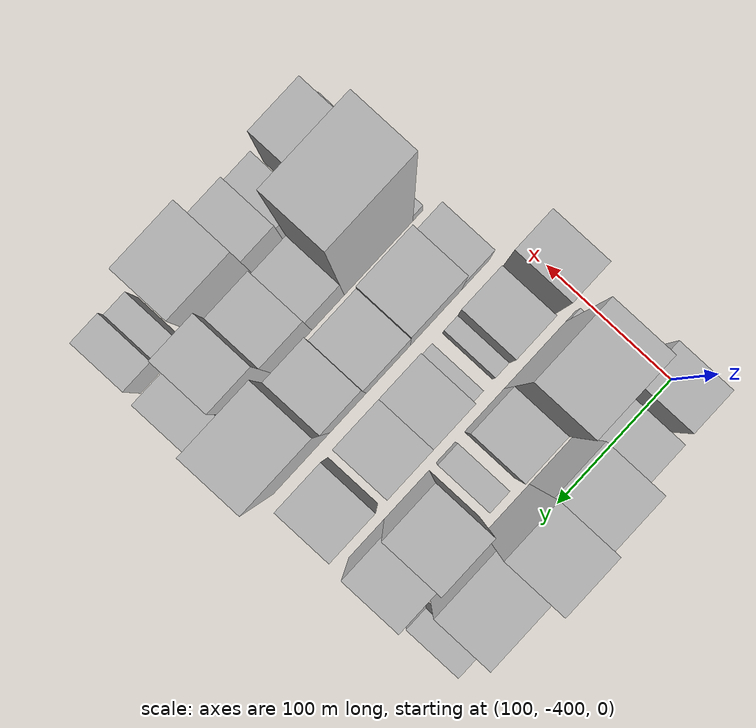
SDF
<sdf version="1.6">
 <world name="default">
  <model name="building_11">
   <static>1</static>
   <pose>100.0000 -392.2786 0 0.000000 0.000000 0.000000</pose>
   <link name="link">
    <pose>0 0 28.50 0 0 0</pose>
    <collision name="collision"><geometry><box><size>40.0000 32.0037 57.0000</size></box></geometry></collision>
    <visual name="visual">
     <cast_shadows>0</cast_shadows>
     <geometry><box><size>40.0000 32.0037 57.0000</size></box></geometry>
     <material>
      <script>
       <uri>model://HANNAS_wall/materials/scripts</uri>
       <uri>model://HANNAS_wall/materials/textures</uri>
       <name>vrc/HANNAS_wall</name>
      </script>
     </material>
    </visual>
   </link>
  </model>
  <model name="building_12">
   <static>1</static>
   <pose>100.0000 -352.0713 0 0.000000 0.000000 0.000000</pose>
   <link name="link">
    <pose>0 0 30.00 0 0 0</pose>
    <collision name="collision"><geometry><box><size>40.0000 32.4109 60.0000</size></box></geometry></collision>
    <visual name="visual">
     <cast_shadows>0</cast_shadows>
     <geometry><box><size>40.0000 32.4109 60.0000</size></box></geometry>
     <material>
      <script>
       <uri>model://HANNAS_wall/materials/scripts</uri>
       <uri>model://HANNAS_wall/materials/textures</uri>
       <name>vrc/HANNAS_wall</name>
      </script>
     </material>
    </visual>
   </link>
  </model>
  <model name="building_13">
   <static>1</static>
   <pose>100.0000 -316.8234 0 0.000000 0.000000 0.000000</pose>
   <link name="link">
    <pose>0 0 54.00 0 0 0</pose>
    <collision name="collision"><geometry><box><size>40.0000 38.0850 108.0000</size></box></geometry></collision>
    <visual name="visual">
     <cast_shadows>0</cast_shadows>
     <geometry><box><size>40.0000 38.0850 108.0000</size></box></geometry>
     <material>
      <script>
       <uri>model://HANNAS_wall/materials/scripts</uri>
       <uri>model://HANNAS_wall/materials/textures</uri>
       <name>vrc/HANNAS_wall</name>
      </script>
     </material>
    </visual>
   </link>
  </model>
  <model name="building_14">
   <static>1</static>
   <pose>100.0000 -278.0052 0 0.000000 0.000000 0.000000</pose>
   <link name="link">
    <pose>0 0 63.00 0 0 0</pose>
    <collision name="collision"><geometry><box><size>40.0000 39.5514 126.0000</size></box></geometry></collision>
    <visual name="visual">
     <cast_shadows>0</cast_shadows>
     <geometry><box><size>40.0000 39.5514 126.0000</size></box></geometry>
     <material>
      <script>
       <uri>model://HANNAS_wall/materials/scripts</uri>
       <uri>model://HANNAS_wall/materials/textures</uri>
       <name>vrc/HANNAS_wall</name>
      </script>
     </material>
    </visual>
   </link>
  </model>
  <model name="building_15">
   <static>1</static>
   <pose>100.0000 -234.2888 0 0.000000 0.000000 0.000000</pose>
   <link name="link">
    <pose>0 0 42.00 0 0 0</pose>
    <collision name="collision"><geometry><box><size>40.0000 47.8813 84.0000</size></box></geometry></collision>
    <visual name="visual">
     <cast_shadows>0</cast_shadows>
     <geometry><box><size>40.0000 47.8813 84.0000</size></box></geometry>
     <material>
      <script>
       <uri>model://HANNAS_wall/materials/scripts</uri>
       <uri>model://HANNAS_wall/materials/textures</uri>
       <name>vrc/HANNAS_wall</name>
      </script>
     </material>
    </visual>
   </link>
  </model>
  <model name="building_16">
   <static>1</static>
   <pose>100.0000 -198.0670 0 0.000000 0.000000 0.000000</pose>
   <link name="link">
    <pose>0 0 16.50 0 0 0</pose>
    <collision name="collision"><geometry><box><size>40.0000 16.5623 33.0000</size></box></geometry></collision>
    <visual name="visual">
     <cast_shadows>0</cast_shadows>
     <geometry><box><size>40.0000 16.5623 33.0000</size></box></geometry>
     <material>
      <script>
       <uri>model://HANNAS_wall/materials/scripts</uri>
       <uri>model://HANNAS_wall/materials/textures</uri>
       <name>vrc/HANNAS_wall</name>
      </script>
     </material>
    </visual>
   </link>
  </model>
  <model name="building_58">
   <static>1</static>
   <pose>149.0000 -387.4839 0 0.000000 0.000000 0.000000</pose>
   <link name="link">
    <pose>0 0 9.00 0 0 0</pose>
    <collision name="collision"><geometry><box><size>40.0000 8.3761 18.0000</size></box></geometry></collision>
    <visual name="visual">
     <cast_shadows>0</cast_shadows>
     <geometry><box><size>40.0000 8.3761 18.0000</size></box></geometry>
     <material>
      <script>
       <uri>model://HANNAS_wall/materials/scripts</uri>
       <uri>model://HANNAS_wall/materials/textures</uri>
       <name>vrc/HANNAS_wall</name>
      </script>
     </material>
    </visual>
   </link>
  </model>
  <model name="building_59">
   <static>1</static>
   <pose>149.0000 -356.2429 0 0.000000 0.000000 0.000000</pose>
   <link name="link">
    <pose>0 0 73.50 0 0 0</pose>
    <collision name="collision"><geometry><box><size>40.0000 54.1060 147.0000</size></box></geometry></collision>
    <visual name="visual">
     <cast_shadows>0</cast_shadows>
     <geometry><box><size>40.0000 54.1060 147.0000</size></box></geometry>
     <material>
      <script>
       <uri>model://HANNAS_wall/materials/scripts</uri>
       <uri>model://HANNAS_wall/materials/textures</uri>
       <name>vrc/HANNAS_wall</name>
      </script>
     </material>
    </visual>
   </link>
  </model>
  <model name="building_60">
   <static>1</static>
   <pose>149.0000 -311.7719 0 0.000000 0.000000 0.000000</pose>
   <link name="link">
    <pose>0 0 30.00 0 0 0</pose>
    <collision name="collision"><geometry><box><size>40.0000 34.8358 60.0000</size></box></geometry></collision>
    <visual name="visual">
     <cast_shadows>0</cast_shadows>
     <geometry><box><size>40.0000 34.8358 60.0000</size></box></geometry>
     <material>
      <script>
       <uri>model://HANNAS_wall/materials/scripts</uri>
       <uri>model://HANNAS_wall/materials/textures</uri>
       <name>vrc/HANNAS_wall</name>
      </script>
     </material>
    </visual>
   </link>
  </model>
  <model name="building_61">
   <static>1</static>
   <pose>149.0000 -277.9789 0 0.000000 0.000000 0.000000</pose>
   <link name="link">
    <pose>0 0 15.00 0 0 0</pose>
    <collision name="collision"><geometry><box><size>40.0000 16.7503 30.0000</size></box></geometry></collision>
    <visual name="visual">
     <cast_shadows>0</cast_shadows>
     <geometry><box><size>40.0000 16.7503 30.0000</size></box></geometry>
     <material>
      <script>
       <uri>model://HANNAS_wall/materials/scripts</uri>
       <uri>model://HANNAS_wall/materials/textures</uri>
       <name>vrc/HANNAS_wall</name>
      </script>
     </material>
    </visual>
   </link>
  </model>
  <model name="building_62">
   <static>1</static>
   <pose>149.0000 -244.0146 0 0.000000 0.000000 0.000000</pose>
   <link name="link">
    <pose>0 0 58.50 0 0 0</pose>
    <collision name="collision"><geometry><box><size>40.0000 39.1783 117.0000</size></box></geometry></collision>
    <visual name="visual">
     <cast_shadows>0</cast_shadows>
     <geometry><box><size>40.0000 39.1783 117.0000</size></box></geometry>
     <material>
      <script>
       <uri>model://HANNAS_wall/materials/scripts</uri>
       <uri>model://HANNAS_wall/materials/textures</uri>
       <name>vrc/HANNAS_wall</name>
      </script>
     </material>
    </visual>
   </link>
  </model>
  <model name="building_63">
   <static>1</static>
   <pose>149.0000 -209.0764 0 0.000000 0.000000 0.000000</pose>
   <link name="link">
    <pose>0 0 46.50 0 0 0</pose>
    <collision name="collision"><geometry><box><size>40.0000 30.6981 93.0000</size></box></geometry></collision>
    <visual name="visual">
     <cast_shadows>0</cast_shadows>
     <geometry><box><size>40.0000 30.6981 93.0000</size></box></geometry>
     <material>
      <script>
       <uri>model://HANNAS_wall/materials/scripts</uri>
       <uri>model://HANNAS_wall/materials/textures</uri>
       <name>vrc/HANNAS_wall</name>
      </script>
     </material>
    </visual>
   </link>
  </model>
  <model name="building_106">
   <static>1</static>
   <pose>198.0000 -391.7980 0 0.000000 0.000000 0.000000</pose>
   <link name="link">
    <pose>0 0 48.00 0 0 0</pose>
    <collision name="collision"><geometry><box><size>40.0000 28.8769 96.0000</size></box></geometry></collision>
    <visual name="visual">
     <cast_shadows>0</cast_shadows>
     <geometry><box><size>40.0000 28.8769 96.0000</size></box></geometry>
     <material>
      <script>
       <uri>model://HANNAS_wall/materials/scripts</uri>
       <uri>model://HANNAS_wall/materials/textures</uri>
       <name>vrc/HANNAS_wall</name>
      </script>
     </material>
    </visual>
   </link>
  </model>
  <model name="building_107">
   <static>1</static>
   <pose>198.0000 -356.1934 0 0.000000 0.000000 0.000000</pose>
   <link name="link">
    <pose>0 0 31.50 0 0 0</pose>
    <collision name="collision"><geometry><box><size>40.0000 32.3324 63.0000</size></box></geometry></collision>
    <visual name="visual">
     <cast_shadows>0</cast_shadows>
     <geometry><box><size>40.0000 32.3324 63.0000</size></box></geometry>
     <material>
      <script>
       <uri>model://HANNAS_wall/materials/scripts</uri>
       <uri>model://HANNAS_wall/materials/textures</uri>
       <name>vrc/HANNAS_wall</name>
      </script>
     </material>
    </visual>
   </link>
  </model>
  <model name="building_108">
   <static>1</static>
   <pose>198.0000 -334.2231 0 0.000000 0.000000 0.000000</pose>
   <link name="link">
    <pose>0 0 12.00 0 0 0</pose>
    <collision name="collision"><geometry><box><size>40.0000 11.6083 24.0000</size></box></geometry></collision>
    <visual name="visual">
     <cast_shadows>0</cast_shadows>
     <geometry><box><size>40.0000 11.6083 24.0000</size></box></geometry>
     <material>
      <script>
       <uri>model://HANNAS_wall/materials/scripts</uri>
       <uri>model://HANNAS_wall/materials/textures</uri>
       <name>vrc/HANNAS_wall</name>
      </script>
     </material>
    </visual>
   </link>
  </model>
  <model name="building_109">
   <static>1</static>
   <pose>198.0000 -313.2500 0 0.000000 0.000000 0.000000</pose>
   <link name="link">
    <pose>0 0 12.00 0 0 0</pose>
    <collision name="collision"><geometry><box><size>40.0000 10.3378 24.0000</size></box></geometry></collision>
    <visual name="visual">
     <cast_shadows>0</cast_shadows>
     <geometry><box><size>40.0000 10.3378 24.0000</size></box></geometry>
     <material>
      <script>
       <uri>model://HANNAS_wall/materials/scripts</uri>
       <uri>model://HANNAS_wall/materials/textures</uri>
       <name>vrc/HANNAS_wall</name>
      </script>
     </material>
    </visual>
   </link>
  </model>
  <model name="building_110">
   <static>1</static>
   <pose>198.0000 -291.2838 0 0.000000 0.000000 0.000000</pose>
   <link name="link">
    <pose>0 0 31.50 0 0 0</pose>
    <collision name="collision"><geometry><box><size>40.0000 33.5947 63.0000</size></box></geometry></collision>
    <visual name="visual">
     <cast_shadows>0</cast_shadows>
     <geometry><box><size>40.0000 33.5947 63.0000</size></box></geometry>
     <material>
      <script>
       <uri>model://HANNAS_wall/materials/scripts</uri>
       <uri>model://HANNAS_wall/materials/textures</uri>
       <name>vrc/HANNAS_wall</name>
      </script>
     </material>
    </visual>
   </link>
  </model>
  <model name="building_111">
   <static>1</static>
   <pose>198.0000 -256.0972 0 0.000000 0.000000 0.000000</pose>
   <link name="link">
    <pose>0 0 31.50 0 0 0</pose>
    <collision name="collision"><geometry><box><size>40.0000 36.7785 63.0000</size></box></geometry></collision>
    <visual name="visual">
     <cast_shadows>0</cast_shadows>
     <geometry><box><size>40.0000 36.7785 63.0000</size></box></geometry>
     <material>
      <script>
       <uri>model://HANNAS_wall/materials/scripts</uri>
       <uri>model://HANNAS_wall/materials/textures</uri>
       <name>vrc/HANNAS_wall</name>
      </script>
     </material>
    </visual>
   </link>
  </model>
  <model name="building_112">
   <static>1</static>
   <pose>198.0000 -210.4511 0 0.000000 0.000000 0.000000</pose>
   <link name="link">
    <pose>0 0 33.00 0 0 0</pose>
    <collision name="collision"><geometry><box><size>40.0000 36.5137 66.0000</size></box></geometry></collision>
    <visual name="visual">
     <cast_shadows>0</cast_shadows>
     <geometry><box><size>40.0000 36.5137 66.0000</size></box></geometry>
     <material>
      <script>
       <uri>model://HANNAS_wall/materials/scripts</uri>
       <uri>model://HANNAS_wall/materials/textures</uri>
       <name>vrc/HANNAS_wall</name>
      </script>
     </material>
    </visual>
   </link>
  </model>
  <model name="building_156">
   <static>1</static>
   <pose>247.0000 -366.8235 0 0.000000 0.000000 0.000000</pose>
   <link name="link">
    <pose>0 0 21.00 0 0 0</pose>
    <collision name="collision"><geometry><box><size>40.0000 24.9106 42.0000</size></box></geometry></collision>
    <visual name="visual">
     <cast_shadows>0</cast_shadows>
     <geometry><box><size>40.0000 24.9106 42.0000</size></box></geometry>
     <material>
      <script>
       <uri>model://HANNAS_wall/materials/scripts</uri>
       <uri>model://HANNAS_wall/materials/textures</uri>
       <name>vrc/HANNAS_wall</name>
      </script>
     </material>
    </visual>
   </link>
  </model>
  <model name="building_157">
   <static>1</static>
   <pose>247.0000 -332.1568 0 0.000000 0.000000 0.000000</pose>
   <link name="link">
    <pose>0 0 37.50 0 0 0</pose>
    <collision name="collision"><geometry><box><size>40.0000 44.4227 75.0000</size></box></geometry></collision>
    <visual name="visual">
     <cast_shadows>0</cast_shadows>
     <geometry><box><size>40.0000 44.4227 75.0000</size></box></geometry>
     <material>
      <script>
       <uri>model://HANNAS_wall/materials/scripts</uri>
       <uri>model://HANNAS_wall/materials/textures</uri>
       <name>vrc/HANNAS_wall</name>
      </script>
     </material>
    </visual>
   </link>
  </model>
  <model name="building_158">
   <static>1</static>
   <pose>247.0000 -290.9001 0 0.000000 0.000000 0.000000</pose>
   <link name="link">
    <pose>0 0 33.00 0 0 0</pose>
    <collision name="collision"><geometry><box><size>40.0000 38.0909 66.0000</size></box></geometry></collision>
    <visual name="visual">
     <cast_shadows>0</cast_shadows>
     <geometry><box><size>40.0000 38.0909 66.0000</size></box></geometry>
     <material>
      <script>
       <uri>model://HANNAS_wall/materials/scripts</uri>
       <uri>model://HANNAS_wall/materials/textures</uri>
       <name>vrc/HANNAS_wall</name>
      </script>
     </material>
    </visual>
   </link>
  </model>
  <model name="building_159">
   <static>1</static>
   <pose>247.0000 -256.1348 0 0.000000 0.000000 0.000000</pose>
   <link name="link">
    <pose>0 0 46.50 0 0 0</pose>
    <collision name="collision"><geometry><box><size>40.0000 31.4397 93.0000</size></box></geometry></collision>
    <visual name="visual">
     <cast_shadows>0</cast_shadows>
     <geometry><box><size>40.0000 31.4397 93.0000</size></box></geometry>
     <material>
      <script>
       <uri>model://HANNAS_wall/materials/scripts</uri>
       <uri>model://HANNAS_wall/materials/textures</uri>
       <name>vrc/HANNAS_wall</name>
      </script>
     </material>
    </visual>
   </link>
  </model>
  <model name="building_160">
   <static>1</static>
   <pose>247.0000 -215.7185 0 0.000000 0.000000 0.000000</pose>
   <link name="link">
    <pose>0 0 72.00 0 0 0</pose>
    <collision name="collision"><geometry><box><size>40.0000 49.3929 144.0000</size></box></geometry></collision>
    <visual name="visual">
     <cast_shadows>0</cast_shadows>
     <geometry><box><size>40.0000 49.3929 144.0000</size></box></geometry>
     <material>
      <script>
       <uri>model://HANNAS_wall/materials/scripts</uri>
       <uri>model://HANNAS_wall/materials/textures</uri>
       <name>vrc/HANNAS_wall</name>
      </script>
     </material>
    </visual>
   </link>
  </model>
  <model name="building_211">
   <static>1</static>
   <pose>296.0000 -369.7304 0 0.000000 0.000000 0.000000</pose>
   <link name="link">
    <pose>0 0 9.00 0 0 0</pose>
    <collision name="collision"><geometry><box><size>40.0000 8.4636 18.0000</size></box></geometry></collision>
    <visual name="visual">
     <cast_shadows>0</cast_shadows>
     <geometry><box><size>40.0000 8.4636 18.0000</size></box></geometry>
     <material>
      <script>
       <uri>model://HANNAS_wall/materials/scripts</uri>
       <uri>model://HANNAS_wall/materials/textures</uri>
       <name>vrc/HANNAS_wall</name>
      </script>
     </material>
    </visual>
   </link>
  </model>
  <model name="building_212">
   <static>1</static>
   <pose>296.0000 -335.6034 0 0.000000 0.000000 0.000000</pose>
   <link name="link">
    <pose>0 0 91.50 0 0 0</pose>
    <collision name="collision"><geometry><box><size>40.0000 59.7904 183.0000</size></box></geometry></collision>
    <visual name="visual">
     <cast_shadows>0</cast_shadows>
     <geometry><box><size>40.0000 59.7904 183.0000</size></box></geometry>
     <material>
      <script>
       <uri>model://HANNAS_wall/materials/scripts</uri>
       <uri>model://HANNAS_wall/materials/textures</uri>
       <name>vrc/HANNAS_wall</name>
      </script>
     </material>
    </visual>
   </link>
  </model>
  <model name="building_213">
   <static>1</static>
   <pose>296.0000 -291.5692 0 0.000000 0.000000 0.000000</pose>
   <link name="link">
    <pose>0 0 27.00 0 0 0</pose>
    <collision name="collision"><geometry><box><size>40.0000 28.2779 54.0000</size></box></geometry></collision>
    <visual name="visual">
     <cast_shadows>0</cast_shadows>
     <geometry><box><size>40.0000 28.2779 54.0000</size></box></geometry>
     <material>
      <script>
       <uri>model://HANNAS_wall/materials/scripts</uri>
       <uri>model://HANNAS_wall/materials/textures</uri>
       <name>vrc/HANNAS_wall</name>
      </script>
     </material>
    </visual>
   </link>
  </model>
  <model name="building_214">
   <static>1</static>
   <pose>296.0000 -260.1485 0 0.000000 0.000000 0.000000</pose>
   <link name="link">
    <pose>0 0 33.00 0 0 0</pose>
    <collision name="collision"><geometry><box><size>40.0000 34.5635 66.0000</size></box></geometry></collision>
    <visual name="visual">
     <cast_shadows>0</cast_shadows>
     <geometry><box><size>40.0000 34.5635 66.0000</size></box></geometry>
     <material>
      <script>
       <uri>model://HANNAS_wall/materials/scripts</uri>
       <uri>model://HANNAS_wall/materials/textures</uri>
       <name>vrc/HANNAS_wall</name>
      </script>
     </material>
    </visual>
   </link>
  </model>
  <model name="building_215">
   <static>1</static>
   <pose>296.0000 -226.3731 0 0.000000 0.000000 0.000000</pose>
   <link name="link">
    <pose>0 0 49.50 0 0 0</pose>
    <collision name="collision"><geometry><box><size>40.0000 32.9874 99.0000</size></box></geometry></collision>
    <visual name="visual">
     <cast_shadows>0</cast_shadows>
     <geometry><box><size>40.0000 32.9874 99.0000</size></box></geometry>
     <material>
      <script>
       <uri>model://HANNAS_wall/materials/scripts</uri>
       <uri>model://HANNAS_wall/materials/textures</uri>
       <name>vrc/HANNAS_wall</name>
      </script>
     </material>
    </visual>
   </link>
  </model>
  <model name="building_216">
   <static>1</static>
   <pose>296.0000 -193.3845 0 0.000000 0.000000 0.000000</pose>
   <link name="link">
    <pose>0 0 24.00 0 0 0</pose>
    <collision name="collision"><geometry><box><size>40.0000 26.9898 48.0000</size></box></geometry></collision>
    <visual name="visual">
     <cast_shadows>0</cast_shadows>
     <geometry><box><size>40.0000 26.9898 48.0000</size></box></geometry>
     <material>
      <script>
       <uri>model://HANNAS_wall/materials/scripts</uri>
       <uri>model://HANNAS_wall/materials/textures</uri>
       <name>vrc/HANNAS_wall</name>
      </script>
     </material>
    </visual>
   </link>
  </model>
  <model name="building_261">
   <static>1</static>
   <pose>345.0000 -376.3724 0 0.000000 0.000000 0.000000</pose>
   <link name="link">
    <pose>0 0 10.50 0 0 0</pose>
    <collision name="collision"><geometry><box><size>40.0000 9.1537 21.0000</size></box></geometry></collision>
    <visual name="visual">
     <cast_shadows>0</cast_shadows>
     <geometry><box><size>40.0000 9.1537 21.0000</size></box></geometry>
     <material>
      <script>
       <uri>model://HANNAS_wall/materials/scripts</uri>
       <uri>model://HANNAS_wall/materials/textures</uri>
       <name>vrc/HANNAS_wall</name>
      </script>
     </material>
    </visual>
   </link>
  </model>
  <model name="building_262">
   <static>1</static>
   <pose>345.0000 -351.6660 0 0.000000 0.000000 0.000000</pose>
   <link name="link">
    <pose>0 0 37.50 0 0 0</pose>
    <collision name="collision"><geometry><box><size>40.0000 40.2592 75.0000</size></box></geometry></collision>
    <visual name="visual">
     <cast_shadows>0</cast_shadows>
     <geometry><box><size>40.0000 40.2592 75.0000</size></box></geometry>
     <material>
      <script>
       <uri>model://HANNAS_wall/materials/scripts</uri>
       <uri>model://HANNAS_wall/materials/textures</uri>
       <name>vrc/HANNAS_wall</name>
      </script>
     </material>
    </visual>
   </link>
  </model>
  <model name="building_263">
   <static>1</static>
   <pose>345.0000 -316.4213 0 0.000000 0.000000 0.000000</pose>
   <link name="link">
    <pose>0 0 21.00 0 0 0</pose>
    <collision name="collision"><geometry><box><size>40.0000 22.2302 42.0000</size></box></geometry></collision>
    <visual name="visual">
     <cast_shadows>0</cast_shadows>
     <geometry><box><size>40.0000 22.2302 42.0000</size></box></geometry>
     <material>
      <script>
       <uri>model://HANNAS_wall/materials/scripts</uri>
       <uri>model://HANNAS_wall/materials/textures</uri>
       <name>vrc/HANNAS_wall</name>
      </script>
     </material>
    </visual>
   </link>
  </model>
  <model name="building_264">
   <static>1</static>
   <pose>345.0000 -291.8069 0 0.000000 0.000000 0.000000</pose>
   <link name="link">
    <pose>0 0 25.50 0 0 0</pose>
    <collision name="collision"><geometry><box><size>40.0000 26.9986 51.0000</size></box></geometry></collision>
    <visual name="visual">
     <cast_shadows>0</cast_shadows>
     <geometry><box><size>40.0000 26.9986 51.0000</size></box></geometry>
     <material>
      <script>
       <uri>model://HANNAS_wall/materials/scripts</uri>
       <uri>model://HANNAS_wall/materials/textures</uri>
       <name>vrc/HANNAS_wall</name>
      </script>
     </material>
    </visual>
   </link>
  </model>
  <model name="building_265">
   <static>1</static>
   <pose>345.0000 -254.1312 0 0.000000 0.000000 0.000000</pose>
   <link name="link">
    <pose>0 0 45.00 0 0 0</pose>
    <collision name="collision"><geometry><box><size>40.0000 48.3527 90.0000</size></box></geometry></collision>
    <visual name="visual">
     <cast_shadows>0</cast_shadows>
     <geometry><box><size>40.0000 48.3527 90.0000</size></box></geometry>
     <material>
      <script>
       <uri>model://HANNAS_wall/materials/scripts</uri>
       <uri>model://HANNAS_wall/materials/textures</uri>
       <name>vrc/HANNAS_wall</name>
      </script>
     </material>
    </visual>
   </link>
  </model>
  <model name="building_266">
   <static>1</static>
   <pose>345.0000 -213.0615 0 0.000000 0.000000 0.000000</pose>
   <link name="link">
    <pose>0 0 16.50 0 0 0</pose>
    <collision name="collision"><geometry><box><size>40.0000 17.7867 33.0000</size></box></geometry></collision>
    <visual name="visual">
     <cast_shadows>0</cast_shadows>
     <geometry><box><size>40.0000 17.7867 33.0000</size></box></geometry>
     <material>
      <script>
       <uri>model://HANNAS_wall/materials/scripts</uri>
       <uri>model://HANNAS_wall/materials/textures</uri>
       <name>vrc/HANNAS_wall</name>
      </script>
     </material>
    </visual>
   </link>
  </model>
  <model name="building_267">
   <static>1</static>
   <pose>345.0000 -192.8227 0 0.000000 0.000000 0.000000</pose>
   <link name="link">
    <pose>0 0 22.50 0 0 0</pose>
    <collision name="collision"><geometry><box><size>40.0000 22.6909 45.0000</size></box></geometry></collision>
    <visual name="visual">
     <cast_shadows>0</cast_shadows>
     <geometry><box><size>40.0000 22.6909 45.0000</size></box></geometry>
     <material>
      <script>
       <uri>model://HANNAS_wall/materials/scripts</uri>
       <uri>model://HANNAS_wall/materials/textures</uri>
       <name>vrc/HANNAS_wall</name>
      </script>
     </material>
    </visual>
   </link>
  </model>
 </world>
</sdf>
